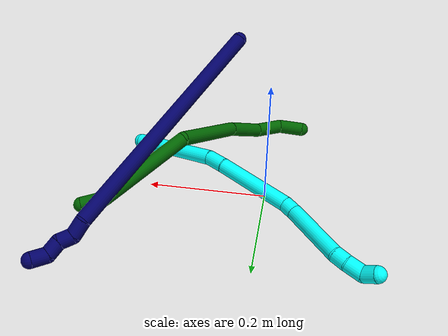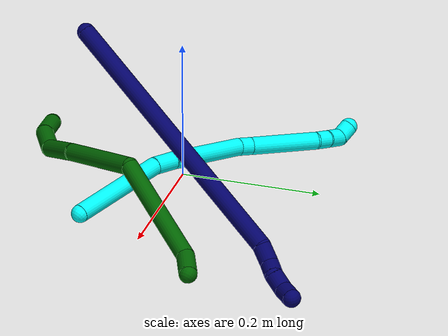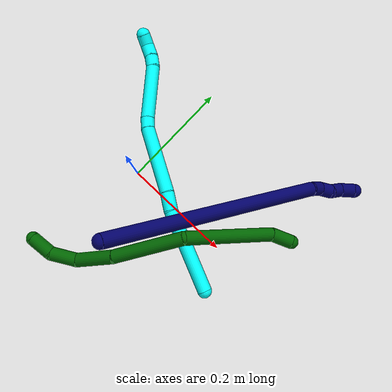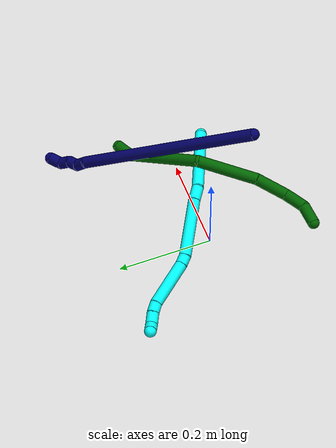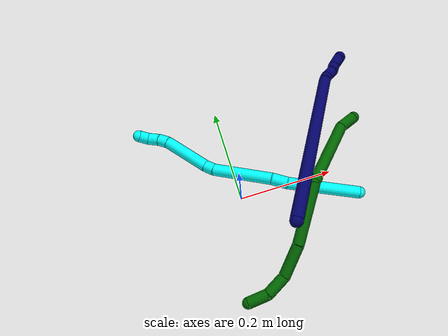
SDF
<sdf version="1.7">
 <world name="default">
  <model name="3">
   <static>0</static>
   <link name="3">
    <collision name="collision-cylinder-e_1_1_4">
     <pose>-0.036041 0.010094 0.065071 -0.153904 -0.500792 0.039436</pose>
     <geometry><cylinder><radius>0.0125</radius><length>0.150135</length></cylinder></geometry>
     <surface>
      <friction><ode><mu>1.16</mu><mu2>1.16</mu2><slip1>0</slip1><slip2>0</slip2></ode></friction>
      <contact><ode><kp>1e+06</kp><kd>1</kd><max_vel>0</max_vel><min_depth>0.001</min_depth></ode></contact>
     </surface>
    </collision>
    <visual name="visual-cylinder-e_1_1_4">
     <pose>-0.036041 0.010094 0.065071 -0.153904 -0.500792 0.039436</pose>
     <geometry><cylinder><radius>0.0125</radius><length>0.150135</length></cylinder></geometry>
     <material><ambient>0.003922 1 0.996078 1</ambient></material>
    </visual>
    <collision name="collision-cylinder-e_2_4_5">
     <pose>-0.080492 0.025983 0.142916 -0.425794 -0.54004 0.119522</pose>
     <geometry><cylinder><radius>0.0125</radius><length>0.032709</length></cylinder></geometry>
     <surface>
      <friction><ode><mu>1.16</mu><mu2>1.16</mu2><slip1>0</slip1><slip2>0</slip2></ode></friction>
      <contact><ode><kp>1e+06</kp><kd>1</kd><max_vel>0</max_vel><min_depth>0.001</min_depth></ode></contact>
     </surface>
    </collision>
    <visual name="visual-cylinder-e_2_4_5">
     <pose>-0.080492 0.025983 0.142916 -0.425794 -0.54004 0.119522</pose>
     <geometry><cylinder><radius>0.0125</radius><length>0.032709</length></cylinder></geometry>
     <material><ambient>0.003922 1 0.996078 1</ambient></material>
    </visual>
    <collision name="collision-cylinder-e_3_5_6">
     <pose>-0.128663 0.051828 0.200346 -0.422039 -0.682192 0.151784</pose>
     <geometry><cylinder><radius>0.0125</radius><length>0.12613</length></cylinder></geometry>
     <surface>
      <friction><ode><mu>1.16</mu><mu2>1.16</mu2><slip1>0</slip1><slip2>0</slip2></ode></friction>
      <contact><ode><kp>1e+06</kp><kd>1</kd><max_vel>0</max_vel><min_depth>0.001</min_depth></ode></contact>
     </surface>
    </collision>
    <visual name="visual-cylinder-e_3_5_6">
     <pose>-0.128663 0.051828 0.200346 -0.422039 -0.682192 0.151784</pose>
     <geometry><cylinder><radius>0.0125</radius><length>0.12613</length></cylinder></geometry>
     <material><ambient>0.003922 1 0.996078 1</ambient></material>
    </visual>
    <collision name="collision-cylinder-e_4_6_7">
     <pose>-0.17372 0.077333 0.252049 -0.658646 -0.536154 0.187211</pose>
     <geometry><cylinder><radius>0.0125</radius><length>0.020732</length></cylinder></geometry>
     <surface>
      <friction><ode><mu>1.16</mu><mu2>1.16</mu2><slip1>0</slip1><slip2>0</slip2></ode></friction>
      <contact><ode><kp>1e+06</kp><kd>1</kd><max_vel>0</max_vel><min_depth>0.001</min_depth></ode></contact>
     </surface>
    </collision>
    <visual name="visual-cylinder-e_4_6_7">
     <pose>-0.17372 0.077333 0.252049 -0.658646 -0.536154 0.187211</pose>
     <geometry><cylinder><radius>0.0125</radius><length>0.020732</length></cylinder></geometry>
     <material><ambient>0.003922 1 0.996078 1</ambient></material>
    </visual>
    <collision name="collision-cylinder-e_5_7_8">
     <pose>-0.198275 0.113475 0.294295 -0.717033 -0.39117 0.148202</pose>
     <geometry><cylinder><radius>0.0125</radius><length>0.101028</length></cylinder></geometry>
     <surface>
      <friction><ode><mu>1.16</mu><mu2>1.16</mu2><slip1>0</slip1><slip2>0</slip2></ode></friction>
      <contact><ode><kp>1e+06</kp><kd>1</kd><max_vel>0</max_vel><min_depth>0.001</min_depth></ode></contact>
     </surface>
    </collision>
    <visual name="visual-cylinder-e_5_7_8">
     <pose>-0.198275 0.113475 0.294295 -0.717033 -0.39117 0.148202</pose>
     <geometry><cylinder><radius>0.0125</radius><length>0.101028</length></cylinder></geometry>
     <material><ambient>0.003922 1 0.996078 1</ambient></material>
    </visual>
    <collision name="collision-cylinder-e_6_8_9">
     <pose>-0.223383 0.148725 0.336873 -0.553829 -0.593199 0.173286</pose>
     <geometry><cylinder><radius>0.0125</radius><length>0.020924</length></cylinder></geometry>
     <surface>
      <friction><ode><mu>1.16</mu><mu2>1.16</mu2><slip1>0</slip1><slip2>0</slip2></ode></friction>
      <contact><ode><kp>1e+06</kp><kd>1</kd><max_vel>0</max_vel><min_depth>0.001</min_depth></ode></contact>
     </surface>
    </collision>
    <visual name="visual-cylinder-e_6_8_9">
     <pose>-0.223383 0.148725 0.336873 -0.553829 -0.593199 0.173286</pose>
     <geometry><cylinder><radius>0.0125</radius><length>0.020924</length></cylinder></geometry>
     <material><ambient>0.003922 1 0.996078 1</ambient></material>
    </visual>
    <collision name="collision-cylinder-e_7_9_10">
     <pose>-0.238259 0.157339 0.353023 -0.432673 -0.751416 0.172946</pose>
     <geometry><cylinder><radius>0.0125</radius><length>0.026448</length></cylinder></geometry>
     <surface>
      <friction><ode><mu>1.16</mu><mu2>1.16</mu2><slip1>0</slip1><slip2>0</slip2></ode></friction>
      <contact><ode><kp>1e+06</kp><kd>1</kd><max_vel>0</max_vel><min_depth>0.001</min_depth></ode></contact>
     </surface>
    </collision>
    <visual name="visual-cylinder-e_7_9_10">
     <pose>-0.238259 0.157339 0.353023 -0.432673 -0.751416 0.172946</pose>
     <geometry><cylinder><radius>0.0125</radius><length>0.026448</length></cylinder></geometry>
     <material><ambient>0.003922 1 0.996078 1</ambient></material>
    </visual>
    <collision name="collision-cylinder-e_8_10_2">
     <pose>-0.248943 0.161688 0.372613 -0.027454 -0.151905 0.002089</pose>
     <geometry><cylinder><radius>0.0125</radius><length>0.021895</length></cylinder></geometry>
     <surface>
      <friction><ode><mu>1.16</mu><mu2>1.16</mu2><slip1>0</slip1><slip2>0</slip2></ode></friction>
      <contact><ode><kp>1e+06</kp><kd>1</kd><max_vel>0</max_vel><min_depth>0.001</min_depth></ode></contact>
     </surface>
    </collision>
    <visual name="visual-cylinder-e_8_10_2">
     <pose>-0.248943 0.161688 0.372613 -0.027454 -0.151905 0.002089</pose>
     <geometry><cylinder><radius>0.0125</radius><length>0.021895</length></cylinder></geometry>
     <material><ambient>0.003922 1 0.996078 1</ambient></material>
    </visual>
    <collision name="collision-sphere-2">
     <pose>-0.2506 0.161985 0.383431 0 -0 0</pose>
     <geometry><sphere><radius>0.0125</radius></sphere></geometry>
     <surface>
      <friction><ode><mu>1.16</mu><mu2>1.16</mu2><slip1>0</slip1><slip2>0</slip2></ode></friction>
      <contact><ode><kp>1e+06</kp><kd>1</kd><max_vel>0</max_vel><min_depth>0.001</min_depth></ode></contact>
     </surface>
    </collision>
    <visual name="visual-sphere-2">
     <pose>-0.2506 0.161985 0.383431 0 -0 0</pose>
     <geometry><sphere><radius>0.0125</radius></sphere></geometry>
     <material><ambient>0.003922 1 0.996078 1</ambient></material>
    </visual>
    <collision name="collision-sphere-10">
     <pose>-0.247286 0.161391 0.361796 0 -0 0</pose>
     <geometry><sphere><radius>0.0125</radius></sphere></geometry>
     <surface>
      <friction><ode><mu>1.16</mu><mu2>1.16</mu2><slip1>0</slip1><slip2>0</slip2></ode></friction>
      <contact><ode><kp>1e+06</kp><kd>1</kd><max_vel>0</max_vel><min_depth>0.001</min_depth></ode></contact>
     </surface>
    </collision>
    <visual name="visual-sphere-10">
     <pose>-0.247286 0.161391 0.361796 0 -0 0</pose>
     <geometry><sphere><radius>0.0125</radius></sphere></geometry>
     <material><ambient>0.003922 1 0.996078 1</ambient></material>
    </visual>
    <collision name="collision-sphere-9">
     <pose>-0.229231 0.153288 0.34425 0 -0 0</pose>
     <geometry><sphere><radius>0.0125</radius></sphere></geometry>
     <surface>
      <friction><ode><mu>1.16</mu><mu2>1.16</mu2><slip1>0</slip1><slip2>0</slip2></ode></friction>
      <contact><ode><kp>1e+06</kp><kd>1</kd><max_vel>0</max_vel><min_depth>0.001</min_depth></ode></contact>
     </surface>
    </collision>
    <visual name="visual-sphere-9">
     <pose>-0.229231 0.153288 0.34425 0 -0 0</pose>
     <geometry><sphere><radius>0.0125</radius></sphere></geometry>
     <material><ambient>0.003922 1 0.996078 1</ambient></material>
    </visual>
    <collision name="collision-sphere-4">
     <pose>-0.072083 0.020189 0.130142 0 -0 0</pose>
     <geometry><sphere><radius>0.0125</radius></sphere></geometry>
     <surface>
      <friction><ode><mu>1.16</mu><mu2>1.16</mu2><slip1>0</slip1><slip2>0</slip2></ode></friction>
      <contact><ode><kp>1e+06</kp><kd>1</kd><max_vel>0</max_vel><min_depth>0.001</min_depth></ode></contact>
     </surface>
    </collision>
    <visual name="visual-sphere-4">
     <pose>-0.072083 0.020189 0.130142 0 -0 0</pose>
     <geometry><sphere><radius>0.0125</radius></sphere></geometry>
     <material><ambient>0.003922 1 0.996078 1</ambient></material>
    </visual>
    <collision name="collision-sphere-1">
     <geometry><sphere><radius>0.0125</radius></sphere></geometry>
     <surface>
      <friction><ode><mu>1.16</mu><mu2>1.16</mu2><slip1>0</slip1><slip2>0</slip2></ode></friction>
      <contact><ode><kp>1e+06</kp><kd>1</kd><max_vel>0</max_vel><min_depth>0.001</min_depth></ode></contact>
     </surface>
    </collision>
    <visual name="visual-sphere-1">
     <geometry><sphere><radius>0.0125</radius></sphere></geometry>
     <material><ambient>0.003922 1 0.996078 1</ambient></material>
    </visual>
    <collision name="collision-sphere-8">
     <pose>-0.217534 0.144163 0.329495 0 -0 0</pose>
     <geometry><sphere><radius>0.0125</radius></sphere></geometry>
     <surface>
      <friction><ode><mu>1.16</mu><mu2>1.16</mu2><slip1>0</slip1><slip2>0</slip2></ode></friction>
      <contact><ode><kp>1e+06</kp><kd>1</kd><max_vel>0</max_vel><min_depth>0.001</min_depth></ode></contact>
     </surface>
    </collision>
    <visual name="visual-sphere-8">
     <pose>-0.217534 0.144163 0.329495 0 -0 0</pose>
     <geometry><sphere><radius>0.0125</radius></sphere></geometry>
     <material><ambient>0.003922 1 0.996078 1</ambient></material>
    </visual>
    <collision name="collision-sphere-5">
     <pose>-0.088901 0.031777 0.155691 0 -0 0</pose>
     <geometry><sphere><radius>0.0125</radius></sphere></geometry>
     <surface>
      <friction><ode><mu>1.16</mu><mu2>1.16</mu2><slip1>0</slip1><slip2>0</slip2></ode></friction>
      <contact><ode><kp>1e+06</kp><kd>1</kd><max_vel>0</max_vel><min_depth>0.001</min_depth></ode></contact>
     </surface>
    </collision>
    <visual name="visual-sphere-5">
     <pose>-0.088901 0.031777 0.155691 0 -0 0</pose>
     <geometry><sphere><radius>0.0125</radius></sphere></geometry>
     <material><ambient>0.003922 1 0.996078 1</ambient></material>
    </visual>
    <collision name="collision-sphere-6">
     <pose>-0.168425 0.071879 0.245002 0 -0 0</pose>
     <geometry><sphere><radius>0.0125</radius></sphere></geometry>
     <surface>
      <friction><ode><mu>1.16</mu><mu2>1.16</mu2><slip1>0</slip1><slip2>0</slip2></ode></friction>
      <contact><ode><kp>1e+06</kp><kd>1</kd><max_vel>0</max_vel><min_depth>0.001</min_depth></ode></contact>
     </surface>
    </collision>
    <visual name="visual-sphere-6">
     <pose>-0.168425 0.071879 0.245002 0 -0 0</pose>
     <geometry><sphere><radius>0.0125</radius></sphere></geometry>
     <material><ambient>0.003922 1 0.996078 1</ambient></material>
    </visual>
    <collision name="collision-sphere-7">
     <pose>-0.179015 0.082787 0.259096 0 -0 0</pose>
     <geometry><sphere><radius>0.0125</radius></sphere></geometry>
     <surface>
      <friction><ode><mu>1.16</mu><mu2>1.16</mu2><slip1>0</slip1><slip2>0</slip2></ode></friction>
      <contact><ode><kp>1e+06</kp><kd>1</kd><max_vel>0</max_vel><min_depth>0.001</min_depth></ode></contact>
     </surface>
    </collision>
    <visual name="visual-sphere-7">
     <pose>-0.179015 0.082787 0.259096 0 -0 0</pose>
     <geometry><sphere><radius>0.0125</radius></sphere></geometry>
     <material><ambient>0.003922 1 0.996078 1</ambient></material>
    </visual>
    <inertial>
     <pose>-0.128662 0.065566 0.19843 0 -0 0</pose>
     <mass>0.5</mass>
     <inertia><ixx>0.0005</ixx><ixy>0</ixy><ixz>0</ixz><iyy>0.000584</iyy><iyz>0</iyz><izz>0.000165</izz></inertia>
    </inertial>
   </link>
   <pose>0.234209 -0.069863 0.046382 -0.549818 -0.838728 0.19277</pose>
  </model>
  <model name="6">
   <static>0</static>
   <link name="6">
    <collision name="collision-cylinder-e_1_1_4">
     <pose>-0.006234 -0.012448 0.013459 0.746402 -0.327802 -0.129332</pose>
     <geometry><cylinder><radius>0.0125</radius><length>0.038727</length></cylinder></geometry>
     <surface>
      <friction><ode><mu>1.16</mu><mu2>1.16</mu2><slip1>0</slip1><slip2>0</slip2></ode></friction>
      <contact><ode><kp>1e+06</kp><kd>1</kd><max_vel>0</max_vel><min_depth>0.001</min_depth></ode></contact>
     </surface>
    </collision>
    <visual name="visual-cylinder-e_1_1_4">
     <pose>-0.006234 -0.012448 0.013459 0.746402 -0.327802 -0.129332</pose>
     <geometry><cylinder><radius>0.0125</radius><length>0.038727</length></cylinder></geometry>
     <material><ambient>0 0.392157 0.003922 1</ambient></material>
    </visual>
    <collision name="collision-cylinder-e_2_4_5">
     <pose>-0.00678 -0.09511 0.073716 0.982902 0.067316 0.036041</pose>
     <geometry><cylinder><radius>0.0125</radius><length>0.169144</length></cylinder></geometry>
     <surface>
      <friction><ode><mu>1.16</mu><mu2>1.16</mu2><slip1>0</slip1><slip2>0</slip2></ode></friction>
      <contact><ode><kp>1e+06</kp><kd>1</kd><max_vel>0</max_vel><min_depth>0.001</min_depth></ode></contact>
     </surface>
    </collision>
    <visual name="visual-cylinder-e_2_4_5">
     <pose>-0.00678 -0.09511 0.073716 0.982902 0.067316 0.036041</pose>
     <geometry><cylinder><radius>0.0125</radius><length>0.169144</length></cylinder></geometry>
     <material><ambient>0 0.392157 0.003922 1</ambient></material>
    </visual>
    <collision name="collision-cylinder-e_3_5_6">
     <pose>-0.020634 -0.227268 0.125191 1.49544 -0.304785 -0.282946</pose>
     <geometry><cylinder><radius>0.0125</radius><length>0.130243</length></cylinder></geometry>
     <surface>
      <friction><ode><mu>1.16</mu><mu2>1.16</mu2><slip1>0</slip1><slip2>0</slip2></ode></friction>
      <contact><ode><kp>1e+06</kp><kd>1</kd><max_vel>0</max_vel><min_depth>0.001</min_depth></ode></contact>
     </surface>
    </collision>
    <visual name="visual-cylinder-e_3_5_6">
     <pose>-0.020634 -0.227268 0.125191 1.49544 -0.304785 -0.282946</pose>
     <geometry><cylinder><radius>0.0125</radius><length>0.130243</length></cylinder></geometry>
     <material><ambient>0 0.392157 0.003922 1</ambient></material>
    </visual>
    <collision name="collision-cylinder-e_4_6_7">
     <pose>-0.056959 -0.320308 0.133814 1.44458 -0.491593 -0.4351</pose>
     <geometry><cylinder><radius>0.0125</radius><length>0.071112</length></cylinder></geometry>
     <surface>
      <friction><ode><mu>1.16</mu><mu2>1.16</mu2><slip1>0</slip1><slip2>0</slip2></ode></friction>
      <contact><ode><kp>1e+06</kp><kd>1</kd><max_vel>0</max_vel><min_depth>0.001</min_depth></ode></contact>
     </surface>
    </collision>
    <visual name="visual-cylinder-e_4_6_7">
     <pose>-0.056959 -0.320308 0.133814 1.44458 -0.491593 -0.4351</pose>
     <geometry><cylinder><radius>0.0125</radius><length>0.071112</length></cylinder></geometry>
     <material><ambient>0 0.392157 0.003922 1</ambient></material>
    </visual>
    <collision name="collision-cylinder-e_5_7_8">
     <pose>-0.08292 -0.368964 0.151051 0.922894 -0.394837 -0.198273</pose>
     <geometry><cylinder><radius>0.0125</radius><length>0.047717</length></cylinder></geometry>
     <surface>
      <friction><ode><mu>1.16</mu><mu2>1.16</mu2><slip1>0</slip1><slip2>0</slip2></ode></friction>
      <contact><ode><kp>1e+06</kp><kd>1</kd><max_vel>0</max_vel><min_depth>0.001</min_depth></ode></contact>
     </surface>
    </collision>
    <visual name="visual-cylinder-e_5_7_8">
     <pose>-0.08292 -0.368964 0.151051 0.922894 -0.394837 -0.198273</pose>
     <geometry><cylinder><radius>0.0125</radius><length>0.047717</length></cylinder></geometry>
     <material><ambient>0 0.392157 0.003922 1</ambient></material>
    </visual>
    <collision name="collision-cylinder-e_6_8_2">
     <pose>-0.105776 -0.395085 0.178591 0.541045 -0.688526 -0.19821</pose>
     <geometry><cylinder><radius>0.0125</radius><length>0.043056</length></cylinder></geometry>
     <surface>
      <friction><ode><mu>1.16</mu><mu2>1.16</mu2><slip1>0</slip1><slip2>0</slip2></ode></friction>
      <contact><ode><kp>1e+06</kp><kd>1</kd><max_vel>0</max_vel><min_depth>0.001</min_depth></ode></contact>
     </surface>
    </collision>
    <visual name="visual-cylinder-e_6_8_2">
     <pose>-0.105776 -0.395085 0.178591 0.541045 -0.688526 -0.19821</pose>
     <geometry><cylinder><radius>0.0125</radius><length>0.043056</length></cylinder></geometry>
     <material><ambient>0 0.392157 0.003922 1</ambient></material>
    </visual>
    <collision name="collision-sphere-2">
     <pose>-0.119456 -0.403647 0.19284 0 -0 0</pose>
     <geometry><sphere><radius>0.0125</radius></sphere></geometry>
     <surface>
      <friction><ode><mu>1.16</mu><mu2>1.16</mu2><slip1>0</slip1><slip2>0</slip2></ode></friction>
      <contact><ode><kp>1e+06</kp><kd>1</kd><max_vel>0</max_vel><min_depth>0.001</min_depth></ode></contact>
     </surface>
    </collision>
    <visual name="visual-sphere-2">
     <pose>-0.119456 -0.403647 0.19284 0 -0 0</pose>
     <geometry><sphere><radius>0.0125</radius></sphere></geometry>
     <material><ambient>0 0.392157 0.003922 1</ambient></material>
    </visual>
    <collision name="collision-sphere-4">
     <pose>-0.012469 -0.024896 0.026917 0 -0 0</pose>
     <geometry><sphere><radius>0.0125</radius></sphere></geometry>
     <surface>
      <friction><ode><mu>1.16</mu><mu2>1.16</mu2><slip1>0</slip1><slip2>0</slip2></ode></friction>
      <contact><ode><kp>1e+06</kp><kd>1</kd><max_vel>0</max_vel><min_depth>0.001</min_depth></ode></contact>
     </surface>
    </collision>
    <visual name="visual-sphere-4">
     <pose>-0.012469 -0.024896 0.026917 0 -0 0</pose>
     <geometry><sphere><radius>0.0125</radius></sphere></geometry>
     <material><ambient>0 0.392157 0.003922 1</ambient></material>
    </visual>
    <collision name="collision-sphere-1">
     <geometry><sphere><radius>0.0125</radius></sphere></geometry>
     <surface>
      <friction><ode><mu>1.16</mu><mu2>1.16</mu2><slip1>0</slip1><slip2>0</slip2></ode></friction>
      <contact><ode><kp>1e+06</kp><kd>1</kd><max_vel>0</max_vel><min_depth>0.001</min_depth></ode></contact>
     </surface>
    </collision>
    <visual name="visual-sphere-1">
     <geometry><sphere><radius>0.0125</radius></sphere></geometry>
     <material><ambient>0 0.392157 0.003922 1</ambient></material>
    </visual>
    <collision name="collision-sphere-8">
     <pose>-0.092097 -0.386523 0.164342 0 -0 0</pose>
     <geometry><sphere><radius>0.0125</radius></sphere></geometry>
     <surface>
      <friction><ode><mu>1.16</mu><mu2>1.16</mu2><slip1>0</slip1><slip2>0</slip2></ode></friction>
      <contact><ode><kp>1e+06</kp><kd>1</kd><max_vel>0</max_vel><min_depth>0.001</min_depth></ode></contact>
     </surface>
    </collision>
    <visual name="visual-sphere-8">
     <pose>-0.092097 -0.386523 0.164342 0 -0 0</pose>
     <geometry><sphere><radius>0.0125</radius></sphere></geometry>
     <material><ambient>0 0.392157 0.003922 1</ambient></material>
    </visual>
    <collision name="collision-sphere-5">
     <pose>-0.001091 -0.165324 0.120514 0 -0 0</pose>
     <geometry><sphere><radius>0.0125</radius></sphere></geometry>
     <surface>
      <friction><ode><mu>1.16</mu><mu2>1.16</mu2><slip1>0</slip1><slip2>0</slip2></ode></friction>
      <contact><ode><kp>1e+06</kp><kd>1</kd><max_vel>0</max_vel><min_depth>0.001</min_depth></ode></contact>
     </surface>
    </collision>
    <visual name="visual-sphere-5">
     <pose>-0.001091 -0.165324 0.120514 0 -0 0</pose>
     <geometry><sphere><radius>0.0125</radius></sphere></geometry>
     <material><ambient>0 0.392157 0.003922 1</ambient></material>
    </visual>
    <collision name="collision-sphere-6">
     <pose>-0.040176 -0.289212 0.129868 0 -0 0</pose>
     <geometry><sphere><radius>0.0125</radius></sphere></geometry>
     <surface>
      <friction><ode><mu>1.16</mu><mu2>1.16</mu2><slip1>0</slip1><slip2>0</slip2></ode></friction>
      <contact><ode><kp>1e+06</kp><kd>1</kd><max_vel>0</max_vel><min_depth>0.001</min_depth></ode></contact>
     </surface>
    </collision>
    <visual name="visual-sphere-6">
     <pose>-0.040176 -0.289212 0.129868 0 -0 0</pose>
     <geometry><sphere><radius>0.0125</radius></sphere></geometry>
     <material><ambient>0 0.392157 0.003922 1</ambient></material>
    </visual>
    <collision name="collision-sphere-7">
     <pose>-0.073743 -0.351404 0.13776 0 -0 0</pose>
     <geometry><sphere><radius>0.0125</radius></sphere></geometry>
     <surface>
      <friction><ode><mu>1.16</mu><mu2>1.16</mu2><slip1>0</slip1><slip2>0</slip2></ode></friction>
      <contact><ode><kp>1e+06</kp><kd>1</kd><max_vel>0</max_vel><min_depth>0.001</min_depth></ode></contact>
     </surface>
    </collision>
    <visual name="visual-sphere-7">
     <pose>-0.073743 -0.351404 0.13776 0 -0 0</pose>
     <geometry><sphere><radius>0.0125</radius></sphere></geometry>
     <material><ambient>0 0.392157 0.003922 1</ambient></material>
    </visual>
    <inertial>
     <pose>-0.033274 -0.207128 0.107416 0 -0 0</pose>
     <mass>0.5</mass>
     <inertia>
      <ixx>0.000569</ixx>
      <ixy>0</ixy>
      <ixz>0</ixz>
      <iyy>0.000204</iyy>
      <iyz>0</iyz>
      <izz>0.000636</izz>
     </inertia>
    </inertial>
   </link>
   <pose>0.290432 0.099758 0.012307 0.045496 -0.907398 -0.355373</pose>
  </model>
  <model name="7">
   <static>0</static>
   <link name="7">
    <collision name="collision-cylinder-e_1_1_4">
     <pose>0.054953 0.171439 0.088632 -1.09365 0.277395 -0.169547</pose>
     <geometry><cylinder><radius>0.0125</radius><length>0.401332</length></cylinder></geometry>
     <surface>
      <friction><ode><mu>1.16</mu><mu2>1.16</mu2><slip1>0</slip1><slip2>0</slip2></ode></friction>
      <contact><ode><kp>1e+06</kp><kd>1</kd><max_vel>0</max_vel><min_depth>0.001</min_depth></ode></contact>
     </surface>
    </collision>
    <visual name="visual-cylinder-e_1_1_4">
     <pose>0.054953 0.171439 0.088632 -1.09365 0.277395 -0.169547</pose>
     <geometry><cylinder><radius>0.0125</radius><length>0.401332</length></cylinder></geometry>
     <material><ambient>0.003922 0 0.403922 1</ambient></material>
    </visual>
    <collision name="collision-cylinder-e_2_4_5">
     <pose>0.110854 0.35281 0.186019 -0.848256 0.071528 -0.032308</pose>
     <geometry><cylinder><radius>0.0125</radius><length>0.026546</length></cylinder></geometry>
     <surface>
      <friction><ode><mu>1.16</mu><mu2>1.16</mu2><slip1>0</slip1><slip2>0</slip2></ode></friction>
      <contact><ode><kp>1e+06</kp><kd>1</kd><max_vel>0</max_vel><min_depth>0.001</min_depth></ode></contact>
     </surface>
    </collision>
    <visual name="visual-cylinder-e_2_4_5">
     <pose>0.110854 0.35281 0.186019 -0.848256 0.071528 -0.032308</pose>
     <geometry><cylinder><radius>0.0125</radius><length>0.026546</length></cylinder></geometry>
     <material><ambient>0.003922 0 0.403922 1</ambient></material>
    </visual>
    <collision name="collision-cylinder-e_3_5_6">
     <pose>0.11068 0.373733 0.196194 -1.44232 -0.100895 0.088716</pose>
     <geometry><cylinder><radius>0.0125</radius><length>0.022279</length></cylinder></geometry>
     <surface>
      <friction><ode><mu>1.16</mu><mu2>1.16</mu2><slip1>0</slip1><slip2>0</slip2></ode></friction>
      <contact><ode><kp>1e+06</kp><kd>1</kd><max_vel>0</max_vel><min_depth>0.001</min_depth></ode></contact>
     </surface>
    </collision>
    <visual name="visual-cylinder-e_3_5_6">
     <pose>0.11068 0.373733 0.196194 -1.44232 -0.100895 0.088716</pose>
     <geometry><cylinder><radius>0.0125</radius><length>0.022279</length></cylinder></geometry>
     <material><ambient>0.003922 0 0.403922 1</ambient></material>
    </visual>
    <collision name="collision-cylinder-e_4_6_7">
     <pose>0.111815 0.394686 0.203587 -1.03063 0.191907 -0.108915</pose>
     <geometry><cylinder><radius>0.0125</radius><length>0.023665</length></cylinder></geometry>
     <surface>
      <friction><ode><mu>1.16</mu><mu2>1.16</mu2><slip1>0</slip1><slip2>0</slip2></ode></friction>
      <contact><ode><kp>1e+06</kp><kd>1</kd><max_vel>0</max_vel><min_depth>0.001</min_depth></ode></contact>
     </surface>
    </collision>
    <visual name="visual-cylinder-e_4_6_7">
     <pose>0.111815 0.394686 0.203587 -1.03063 0.191907 -0.108915</pose>
     <geometry><cylinder><radius>0.0125</radius><length>0.023665</length></cylinder></geometry>
     <material><ambient>0.003922 0 0.403922 1</ambient></material>
    </visual>
    <collision name="collision-cylinder-e_5_7_2">
     <pose>0.115265 0.417609 0.208189 -1.67623 0.091299 -0.101454</pose>
     <geometry><cylinder><radius>0.0125</radius><length>0.026178</length></cylinder></geometry>
     <surface>
      <friction><ode><mu>1.16</mu><mu2>1.16</mu2><slip1>0</slip1><slip2>0</slip2></ode></friction>
      <contact><ode><kp>1e+06</kp><kd>1</kd><max_vel>0</max_vel><min_depth>0.001</min_depth></ode></contact>
     </surface>
    </collision>
    <visual name="visual-cylinder-e_5_7_2">
     <pose>0.115265 0.417609 0.208189 -1.67623 0.091299 -0.101454</pose>
     <geometry><cylinder><radius>0.0125</radius><length>0.026178</length></cylinder></geometry>
     <material><ambient>0.003922 0 0.403922 1</ambient></material>
    </visual>
    <collision name="collision-sphere-2">
     <pose>0.116458 0.430571 0.206817 0 -0 0</pose>
     <geometry><sphere><radius>0.0125</radius></sphere></geometry>
     <surface>
      <friction><ode><mu>1.16</mu><mu2>1.16</mu2><slip1>0</slip1><slip2>0</slip2></ode></friction>
      <contact><ode><kp>1e+06</kp><kd>1</kd><max_vel>0</max_vel><min_depth>0.001</min_depth></ode></contact>
     </surface>
    </collision>
    <visual name="visual-sphere-2">
     <pose>0.116458 0.430571 0.206817 0 -0 0</pose>
     <geometry><sphere><radius>0.0125</radius></sphere></geometry>
     <material><ambient>0.003922 0 0.403922 1</ambient></material>
    </visual>
    <collision name="collision-sphere-7">
     <pose>0.114072 0.404647 0.209561 0 -0 0</pose>
     <geometry><sphere><radius>0.0125</radius></sphere></geometry>
     <surface>
      <friction><ode><mu>1.16</mu><mu2>1.16</mu2><slip1>0</slip1><slip2>0</slip2></ode></friction>
      <contact><ode><kp>1e+06</kp><kd>1</kd><max_vel>0</max_vel><min_depth>0.001</min_depth></ode></contact>
     </surface>
    </collision>
    <visual name="visual-sphere-7">
     <pose>0.114072 0.404647 0.209561 0 -0 0</pose>
     <geometry><sphere><radius>0.0125</radius></sphere></geometry>
     <material><ambient>0.003922 0 0.403922 1</ambient></material>
    </visual>
    <collision name="collision-sphere-6">
     <pose>0.109558 0.384724 0.197614 0 -0 0</pose>
     <geometry><sphere><radius>0.0125</radius></sphere></geometry>
     <surface>
      <friction><ode><mu>1.16</mu><mu2>1.16</mu2><slip1>0</slip1><slip2>0</slip2></ode></friction>
      <contact><ode><kp>1e+06</kp><kd>1</kd><max_vel>0</max_vel><min_depth>0.001</min_depth></ode></contact>
     </surface>
    </collision>
    <visual name="visual-sphere-6">
     <pose>0.109558 0.384724 0.197614 0 -0 0</pose>
     <geometry><sphere><radius>0.0125</radius></sphere></geometry>
     <material><ambient>0.003922 0 0.403922 1</ambient></material>
    </visual>
    <collision name="collision-sphere-5">
     <pose>0.111802 0.362741 0.194774 0 -0 0</pose>
     <geometry><sphere><radius>0.0125</radius></sphere></geometry>
     <surface>
      <friction><ode><mu>1.16</mu><mu2>1.16</mu2><slip1>0</slip1><slip2>0</slip2></ode></friction>
      <contact><ode><kp>1e+06</kp><kd>1</kd><max_vel>0</max_vel><min_depth>0.001</min_depth></ode></contact>
     </surface>
    </collision>
    <visual name="visual-sphere-5">
     <pose>0.111802 0.362741 0.194774 0 -0 0</pose>
     <geometry><sphere><radius>0.0125</radius></sphere></geometry>
     <material><ambient>0.003922 0 0.403922 1</ambient></material>
    </visual>
    <collision name="collision-sphere-1">
     <geometry><sphere><radius>0.0125</radius></sphere></geometry>
     <surface>
      <friction><ode><mu>1.16</mu><mu2>1.16</mu2><slip1>0</slip1><slip2>0</slip2></ode></friction>
      <contact><ode><kp>1e+06</kp><kd>1</kd><max_vel>0</max_vel><min_depth>0.001</min_depth></ode></contact>
     </surface>
    </collision>
    <visual name="visual-sphere-1">
     <geometry><sphere><radius>0.0125</radius></sphere></geometry>
     <material><ambient>0.003922 0 0.403922 1</ambient></material>
    </visual>
    <collision name="collision-sphere-4">
     <pose>0.109905 0.342879 0.177264 0 -0 0</pose>
     <geometry><sphere><radius>0.0125</radius></sphere></geometry>
     <surface>
      <friction><ode><mu>1.16</mu><mu2>1.16</mu2><slip1>0</slip1><slip2>0</slip2></ode></friction>
      <contact><ode><kp>1e+06</kp><kd>1</kd><max_vel>0</max_vel><min_depth>0.001</min_depth></ode></contact>
     </surface>
    </collision>
    <visual name="visual-sphere-4">
     <pose>0.109905 0.342879 0.177264 0 -0 0</pose>
     <geometry><sphere><radius>0.0125</radius></sphere></geometry>
     <material><ambient>0.003922 0 0.403922 1</ambient></material>
    </visual>
    <inertial>
     <pose>0.066253 0.213537 0.110296 0 -0 0</pose>
     <mass>0.5</mass>
     <inertia>
      <ixx>0.004262</ixx>
      <ixy>0</ixy>
      <ixz>0</ixz>
      <iyy>0.001827</iyy>
      <iyz>0</iyz>
      <izz>-0.006087</izz>
     </inertia>
    </inertial>
   </link>
   <pose>0.066985 -0.116791 0.23438 -3.04628 -0.183236 2.17792</pose>
  </model>
 </world>
</sdf>
